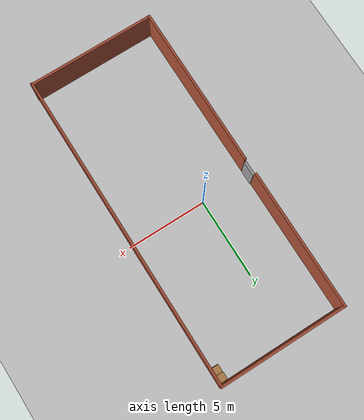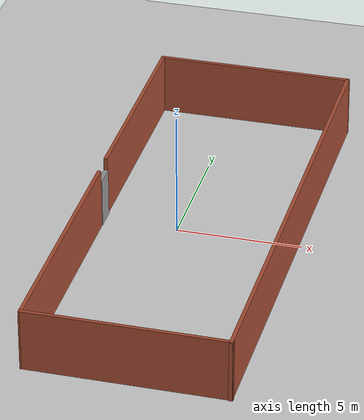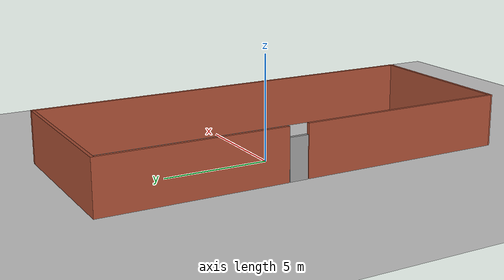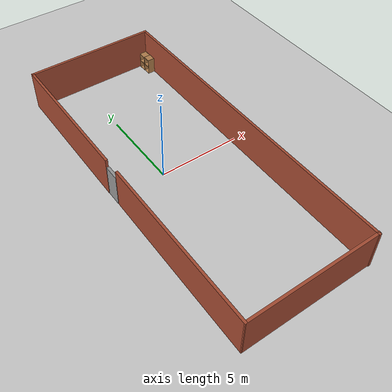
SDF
<sdf version="1.6">
 <world name="default">
  <light name="sun" type="directional">
   <pose>0 0 10 0 -0 0</pose>
   <diffuse>0.8 0.8 0.8 1</diffuse>
   <specular>0.2 0.2 0.2 1</specular>
   <attenuation>
    <range>1000</range>
    <constant>0.9</constant>
    <linear>0.01</linear>
    <quadratic>0.001</quadratic>
   </attenuation>
   <direction>-0.5 0.1 -0.9</direction>
  </light>
  <model name="ground_plane">
   <static>1</static>
   <link name="link">
    <collision name="collision">
     <geometry><plane><normal>0 0 1</normal><size>100 100</size></plane></geometry>
     <surface>
      <contact><collide_bitmask>65535</collide_bitmask></contact>
      <friction><ode><mu>100</mu><mu2>50</mu2></ode></friction>
     </surface>
    </collision>
    <visual name="visual">
     <cast_shadows>0</cast_shadows>
     <geometry><plane><normal>0 0 1</normal><size>100 100</size></plane></geometry>
     <material>
      <script><uri>file://media/materials/scripts/gazebo.material</uri><name>Gazebo/Grey</name></script>
     </material>
    </visual>
   </link>
  </model>
  <gravity>0 0 -9.8</gravity>
  <magnetic_field>6e-06 2.3e-05 -4.2e-05</magnetic_field>
  <atmosphere type="adiabatic"/>
  <physics name="default_physics" default="0" type="ode">
   <max_step_size>0.001</max_step_size>
   <real_time_factor>1</real_time_factor>
   <real_time_update_rate>1000</real_time_update_rate>
  </physics>
  <scene><ambient>0.4 0.4 0.4 1</ambient><background>0.7 0.7 0.7 1</background><shadows>1</shadows></scene>
  <spherical_coordinates>
   <surface_model>EARTH_WGS84</surface_model>
   <latitude_deg>0</latitude_deg>
   <longitude_deg>0</longitude_deg>
   <elevation>0</elevation>
   <heading_deg>0</heading_deg>
  </spherical_coordinates>
  <model name="AGVstorehouse">
   <pose>0.902704 -0.703584 0 0 0 -1.57168</pose>
   <link name="Door_0">
    <collision name="Door_0_Collision">
     <geometry><box><size>0.9 0.17 2</size></box></geometry>
     <pose>0 0 1 0 -0 0</pose>
    </collision>
    <visual name="Door_0_Visual">
     <pose>0 0 1 0 -0 0</pose>
     <geometry><box><size>0.9 0.17 2</size></box></geometry>
     <material>
      <script><uri>file://media/materials/scripts/gazebo.material</uri><name>Gazebo/Grey</name></script>
     </material>
    </visual>
    <pose>-0.777666 -3.91132 0 0 -0 0</pose>
   </link>
   <link name="Wall_0">
    <collision name="Wall_0_Collision">
     <geometry><box><size>20 0.15 2.5</size></box></geometry>
     <pose>0 0 1.25 0 -0 0</pose>
    </collision>
    <visual name="Wall_0_Visual">
     <pose>0 0 1.25 0 -0 0</pose>
     <geometry><box><size>20 0.15 2.5</size></box></geometry>
     <material>
      <script><uri>file://media/materials/scripts/gazebo.material</uri><name>Gazebo/Bricks</name></script>
      <ambient>1 1 1 1</ambient>
     </material>
     <meta><layer>0</layer></meta>
    </visual>
    <pose>0 3.91418 0 0 -0 0</pose>
   </link>
   <link name="Wall_3">
    <collision name="Wall_3_Collision">
     <geometry><box><size>8 0.15 2.5</size></box></geometry>
     <pose>0 0 1.25 0 -0 0</pose>
    </collision>
    <visual name="Wall_3_Visual">
     <pose>0 0 1.25 0 -0 0</pose>
     <geometry><box><size>8 0.15 2.5</size></box></geometry>
     <material>
      <script><uri>file://media/materials/scripts/gazebo.material</uri><name>Gazebo/Bricks</name></script>
      <ambient>1 1 1 1</ambient>
     </material>
     <meta><layer>0</layer></meta>
    </visual>
    <pose>-9.925 -0.010817 0 0 -0 -1.5708</pose>
   </link>
   <link name="Wall_5">
    <collision name="Wall_5_Collision">
     <geometry><box><size>8.75 0.15 2.5</size></box></geometry>
     <pose>0 0 1.25 0 -0 0</pose>
    </collision>
    <visual name="Wall_5_Visual">
     <pose>0 0 1.25 0 -0 0</pose>
     <geometry><box><size>8.75 0.15 2.5</size></box></geometry>
     <material>
      <script><uri>file://media/materials/scripts/gazebo.material</uri><name>Gazebo/Bricks</name></script>
      <ambient>1 1 1 1</ambient>
     </material>
     <meta><layer>0</layer></meta>
    </visual>
    <pose>-5.625 -3.93582 0 0 -0 0</pose>
   </link>
   <link name="Wall_7">
    <collision name="Wall_7_Collision">
     <geometry><box><size>10.25 0.15 2.5</size></box></geometry>
     <pose>0 0 1.25 0 -0 0</pose>
    </collision>
    <visual name="Wall_7_Visual">
     <pose>0 0 1.25 0 -0 0</pose>
     <geometry><box><size>10.25 0.15 2.5</size></box></geometry>
     <material>
      <script><uri>file://media/materials/scripts/gazebo.material</uri><name>Gazebo/Bricks</name></script>
      <ambient>1 1 1 1</ambient>
     </material>
     <meta><layer>0</layer></meta>
    </visual>
    <pose>4.83094 -3.91132 0 0 -0 0</pose>
   </link>
   <link name="Wall_8">
    <collision name="Wall_8_Collision">
     <geometry><box><size>7.99706 0.15 2.5</size></box></geometry>
     <pose>0 0 1.25 0 -0 0</pose>
    </collision>
    <visual name="Wall_8_Visual">
     <pose>0 0 1.25 0 -0 0</pose>
     <geometry><box><size>7.99706 0.15 2.5</size></box></geometry>
     <material>
      <script><uri>file://media/materials/scripts/gazebo.material</uri><name>Gazebo/Bricks</name></script>
      <ambient>1 1 1 1</ambient>
     </material>
     <meta><layer>0</layer></meta>
    </visual>
    <pose>9.88498 0.012211 0 0 -0 1.56977</pose>
   </link>
   <static>1</static>
  </model>
  <model name="cabinet">
   <static>1</static>
   <link name="cabinet_bottom_plate">
    <inertial>
     <pose>0 0 -1 0 -0 0</pose>
     <inertia><ixx>2.05</ixx><ixy>0</ixy><ixz>0</ixz><iyy>2.05</iyy><iyz>0</iyz><izz>2.05</izz></inertia>
     <mass>25</mass>
    </inertial>
    <collision name="cabinet_bottom_plate_geom">
     <pose>0 0 0.01 0 -0 0</pose>
     <geometry><box><size>0.45 0.45 0.02</size></box></geometry>
    </collision>
    <visual name="cabinet_bottom_plate_geom_visual">
     <pose>0 0 0.01 0 -0 0</pose>
     <geometry><box><size>0.45 0.45 0.02</size></box></geometry>
     <material>
      <script><uri>file://media/materials/scripts/gazebo.material</uri><name>Gazebo/Wood</name></script>
     </material>
    </visual>
    <collision name="cabinet_bottom_plate_geom_cabinet_back_plate">
     <pose>0.235 0 0.51 0 -0 0</pose>
     <geometry><box><size>0.02 0.45 1.02</size></box></geometry>
    </collision>
    <visual name="cabinet_bottom_plate_geom_cabinet_back_plate_visual">
     <pose>0.235 0 0.51 0 -0 0</pose>
     <geometry><box><size>0.02 0.45 1.02</size></box></geometry>
     <material>
      <script><uri>file://media/materials/scripts/gazebo.material</uri><name>Gazebo/Wood</name></script>
     </material>
    </visual>
    <collision name="cabinet_bottom_plate_geom_cabinet_left_plate">
     <pose>0 0.235 0.51 0 -0 0</pose>
     <geometry><box><size>0.45 0.02 1.02</size></box></geometry>
    </collision>
    <visual name="cabinet_bottom_plate_geom_cabinet_left_plate_visual">
     <pose>0 0.235 0.51 0 -0 0</pose>
     <geometry><box><size>0.45 0.02 1.02</size></box></geometry>
     <material>
      <script><uri>file://media/materials/scripts/gazebo.material</uri><name>Gazebo/Wood</name></script>
     </material>
    </visual>
    <collision name="cabinet_bottom_plate_geom_cabinet_middle_plate">
     <pose>0 0 0.51 0 -0 0</pose>
     <geometry><box><size>0.45 0.45 0.02</size></box></geometry>
    </collision>
    <visual name="cabinet_bottom_plate_geom_cabinet_middle_plate_visual">
     <pose>0 0 0.51 0 -0 0</pose>
     <geometry><box><size>0.45 0.45 0.02</size></box></geometry>
     <material>
      <script><uri>file://media/materials/scripts/gazebo.material</uri><name>Gazebo/Wood</name></script>
     </material>
    </visual>
    <collision name="cabinet_bottom_plate_geom_cabinet_right_plate">
     <pose>0 -0.235 0.51 0 -0 0</pose>
     <geometry><box><size>0.45 0.02 1.02</size></box></geometry>
    </collision>
    <visual name="cabinet_bottom_plate_geom_cabinet_right_plate_visual">
     <pose>0 -0.235 0.51 0 -0 0</pose>
     <geometry><box><size>0.45 0.02 1.02</size></box></geometry>
     <material>
      <script><uri>file://media/materials/scripts/gazebo.material</uri><name>Gazebo/Wood</name></script>
     </material>
    </visual>
    <collision name="cabinet_bottom_plate_geom_cabinet_top_plate">
     <pose>0 0 1.01 0 -0 0</pose>
     <geometry><box><size>0.45 0.45 0.02</size></box></geometry>
    </collision>
    <visual name="cabinet_bottom_plate_geom_cabinet_top_plate_visual">
     <pose>0 0 1.01 0 -0 0</pose>
     <geometry><box><size>0.45 0.45 0.02</size></box></geometry>
     <material>
      <script><uri>file://media/materials/scripts/gazebo.material</uri><name>Gazebo/Wood</name></script>
     </material>
    </visual>
   </link>
   <pose>4.50466 8.86578 0 0 -0 0</pose>
  </model>
  <model name="cabinet_0">
   <static>1</static>
   <link name="cabinet_bottom_plate">
    <inertial>
     <pose>0 0 -1 0 -0 0</pose>
     <inertia><ixx>2.05</ixx><ixy>0</ixy><ixz>0</ixz><iyy>2.05</iyy><iyz>0</iyz><izz>2.05</izz></inertia>
     <mass>25</mass>
    </inertial>
    <collision name="cabinet_bottom_plate_geom">
     <pose>0 0 0.01 0 -0 0</pose>
     <geometry><box><size>0.45 0.45 0.02</size></box></geometry>
    </collision>
    <visual name="cabinet_bottom_plate_geom_visual">
     <pose>0 0 0.01 0 -0 0</pose>
     <geometry><box><size>0.45 0.45 0.02</size></box></geometry>
     <material>
      <script><uri>file://media/materials/scripts/gazebo.material</uri><name>Gazebo/Wood</name></script>
     </material>
    </visual>
    <collision name="cabinet_bottom_plate_geom_cabinet_back_plate">
     <pose>0.235 0 0.51 0 -0 0</pose>
     <geometry><box><size>0.02 0.45 1.02</size></box></geometry>
    </collision>
    <visual name="cabinet_bottom_plate_geom_cabinet_back_plate_visual">
     <pose>0.235 0 0.51 0 -0 0</pose>
     <geometry><box><size>0.02 0.45 1.02</size></box></geometry>
     <material>
      <script><uri>file://media/materials/scripts/gazebo.material</uri><name>Gazebo/Wood</name></script>
     </material>
    </visual>
    <collision name="cabinet_bottom_plate_geom_cabinet_left_plate">
     <pose>0 0.235 0.51 0 -0 0</pose>
     <geometry><box><size>0.45 0.02 1.02</size></box></geometry>
    </collision>
    <visual name="cabinet_bottom_plate_geom_cabinet_left_plate_visual">
     <pose>0 0.235 0.51 0 -0 0</pose>
     <geometry><box><size>0.45 0.02 1.02</size></box></geometry>
     <material>
      <script><uri>file://media/materials/scripts/gazebo.material</uri><name>Gazebo/Wood</name></script>
     </material>
    </visual>
    <collision name="cabinet_bottom_plate_geom_cabinet_middle_plate">
     <pose>0 0 0.51 0 -0 0</pose>
     <geometry><box><size>0.45 0.45 0.02</size></box></geometry>
    </collision>
    <visual name="cabinet_bottom_plate_geom_cabinet_middle_plate_visual">
     <pose>0 0 0.51 0 -0 0</pose>
     <geometry><box><size>0.45 0.45 0.02</size></box></geometry>
     <material>
      <script><uri>file://media/materials/scripts/gazebo.material</uri><name>Gazebo/Wood</name></script>
     </material>
    </visual>
    <collision name="cabinet_bottom_plate_geom_cabinet_right_plate">
     <pose>0 -0.235 0.51 0 -0 0</pose>
     <geometry><box><size>0.45 0.02 1.02</size></box></geometry>
    </collision>
    <visual name="cabinet_bottom_plate_geom_cabinet_right_plate_visual">
     <pose>0 -0.235 0.51 0 -0 0</pose>
     <geometry><box><size>0.45 0.02 1.02</size></box></geometry>
     <material>
      <script><uri>file://media/materials/scripts/gazebo.material</uri><name>Gazebo/Wood</name></script>
     </material>
    </visual>
    <collision name="cabinet_bottom_plate_geom_cabinet_top_plate">
     <pose>0 0 1.01 0 -0 0</pose>
     <geometry><box><size>0.45 0.45 0.02</size></box></geometry>
    </collision>
    <visual name="cabinet_bottom_plate_geom_cabinet_top_plate_visual">
     <pose>0 0 1.01 0 -0 0</pose>
     <geometry><box><size>0.45 0.45 0.02</size></box></geometry>
     <material>
      <script><uri>file://media/materials/scripts/gazebo.material</uri><name>Gazebo/Wood</name></script>
     </material>
    </visual>
   </link>
   <pose>4.5247 8.39338 0 0 -0 0</pose>
  </model>
 </world>
</sdf>
